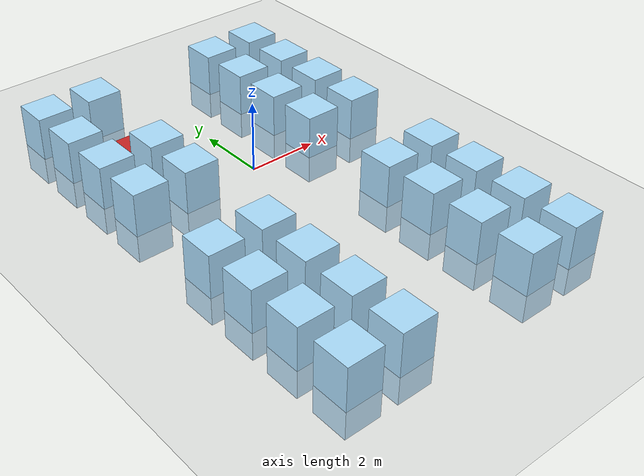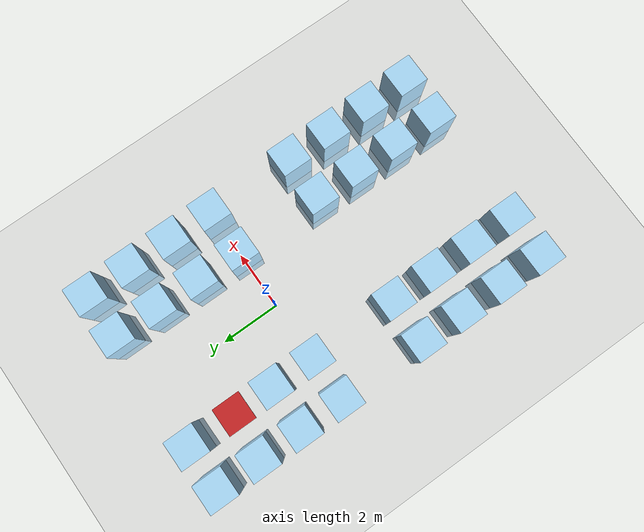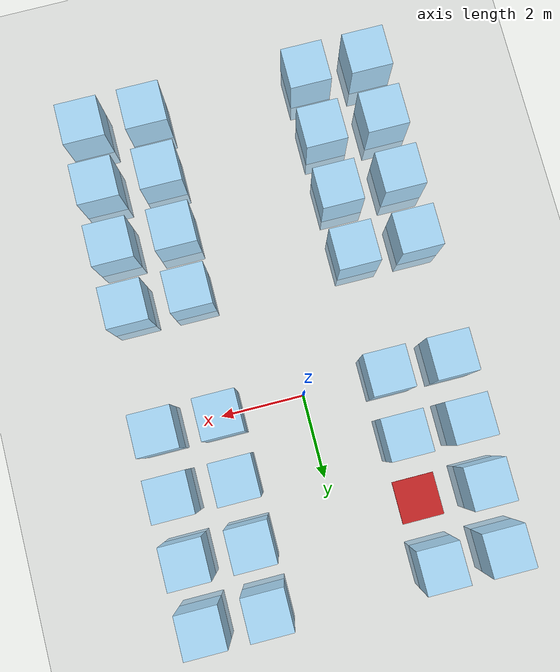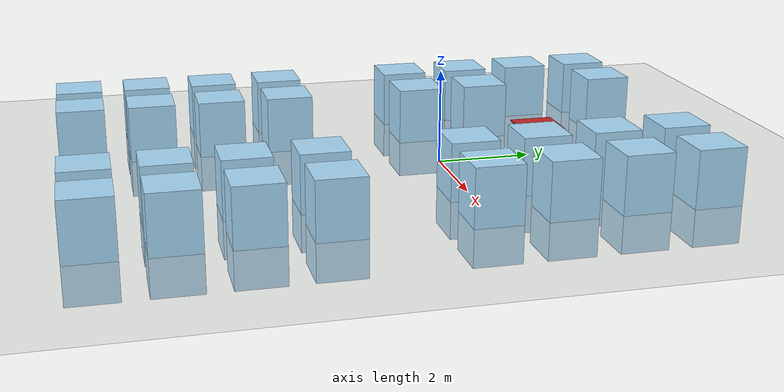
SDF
<sdf version="1.6">
 <world name="default">
  <model name="ground_plane">
   <static>1</static>
   <link name="link">
    <collision name="collision">
     <geometry><plane><normal>0 0 1</normal><size>100 100</size></plane></geometry>
     <surface><friction><ode><mu>100</mu><mu2>50</mu2></ode></friction></surface>
    </collision>
    <visual name="visual">
     <cast_shadows>0</cast_shadows>
     <geometry><plane><normal>0 0 1</normal><size>100 100</size></plane></geometry>
     <material><script><uri>model://aws_robomaker_warehouse_GroundB_01</uri></script></material>
    </visual>
   </link>
  </model>
  <gravity>0 0 -9.8</gravity>
  <magnetic_field>6e-06 2.3e-05 -4.2e-05</magnetic_field>
  <atmosphere type="adiabatic"/>
  <physics name="default_physics" default="0" type="ode">
   <max_step_size>0.001</max_step_size>
   <real_time_update_rate>1000</real_time_update_rate>
  </physics>
  <model name="grid1_1">
   <pose>3.5 -7.5 0.2 0 0 0</pose>
   <link name="link">
    <collision name="collision"><geometry><box><size>1 1 2</size></box></geometry></collision>
    <visual name="visual">
     <geometry><box><size>1 1 2</size></box></geometry>
     <material>
      <ambient>0.678 0.878 1 1</ambient>
      <script><uri>file://media/materials/scripts/gazebo.material</uri></script>
     </material>
    </visual>
   </link>
  </model>
  <model name="grid1_2">
   <pose>2 -7.5 0.2 0 0 0</pose>
   <link name="link">
    <collision name="collision"><geometry><box><size>1 1 2</size></box></geometry></collision>
    <visual name="visual">
     <geometry><box><size>1 1 2</size></box></geometry>
     <material>
      <ambient>0.678 0.878 1 1</ambient>
      <script><uri>file://media/materials/scripts/gazebo.material</uri></script>
     </material>
    </visual>
   </link>
  </model>
  <model name="grid1_3">
   <pose>3.5 -6 0.2 0 0 0</pose>
   <link name="link">
    <collision name="collision"><geometry><box><size>1 1 2</size></box></geometry></collision>
    <visual name="visual">
     <geometry><box><size>1 1 2</size></box></geometry>
     <material>
      <ambient>0.678 0.878 1 1</ambient>
      <script><uri>file://media/materials/scripts/gazebo.material</uri></script>
     </material>
    </visual>
   </link>
  </model>
  <model name="grid1_4">
   <pose>2 -6 0.2 0 0 0</pose>
   <link name="link">
    <collision name="collision"><geometry><box><size>1 1 2</size></box></geometry></collision>
    <visual name="visual">
     <geometry><box><size>1 1 2</size></box></geometry>
     <material>
      <ambient>0.678 0.878 1 1</ambient>
      <script><uri>file://media/materials/scripts/gazebo.material</uri></script>
     </material>
    </visual>
   </link>
  </model>
  <model name="grid1_5">
   <pose>3.5 -4.5 0.2 0 0 0</pose>
   <link name="link">
    <collision name="collision"><geometry><box><size>1 1 2</size></box></geometry></collision>
    <visual name="visual">
     <geometry><box><size>1 1 2</size></box></geometry>
     <material>
      <ambient>0.678 0.878 1 1</ambient>
      <script><uri>file://media/materials/scripts/gazebo.material</uri></script>
     </material>
    </visual>
   </link>
  </model>
  <model name="grid1_6">
   <pose>2 -4.5 0.2 0 0 0</pose>
   <link name="link">
    <collision name="collision"><geometry><box><size>1 1 2</size></box></geometry></collision>
    <visual name="visual">
     <geometry><box><size>1 1 2</size></box></geometry>
     <material>
      <ambient>0.678 0.878 1 1</ambient>
      <script><uri>file://media/materials/scripts/gazebo.material</uri></script>
     </material>
    </visual>
   </link>
  </model>
  <model name="grid1_7">
   <pose>3.5 -3 0.2 0 0 0</pose>
   <link name="link">
    <collision name="collision"><geometry><box><size>1 1 2</size></box></geometry></collision>
    <visual name="visual">
     <geometry><box><size>1 1 2</size></box></geometry>
     <material>
      <ambient>0.678 0.878 1 1</ambient>
      <script><uri>file://media/materials/scripts/gazebo.material</uri></script>
     </material>
    </visual>
   </link>
  </model>
  <model name="grid1_8">
   <pose>2 -3 0.2 0 0 0</pose>
   <link name="link">
    <collision name="collision"><geometry><box><size>1 1 2</size></box></geometry></collision>
    <visual name="visual">
     <geometry><box><size>1 1 2</size></box></geometry>
     <material>
      <ambient>0.678 0.878 1 1</ambient>
      <script><uri>file://media/materials/scripts/gazebo.material</uri></script>
     </material>
    </visual>
   </link>
  </model>
  <model name="grid2_1">
   <pose>-2 -7.5 0.2 0 0 0</pose>
   <link name="link">
    <collision name="collision"><geometry><box><size>1 1 2</size></box></geometry></collision>
    <visual name="visual">
     <geometry><box><size>1 1 2</size></box></geometry>
     <material>
      <ambient>0.678 0.878 1 1</ambient>
      <script><uri>file://media/materials/scripts/gazebo.material</uri></script>
     </material>
    </visual>
   </link>
  </model>
  <model name="grid2_2">
   <pose>-3.5 -7.5 0.2 0 0 0</pose>
   <link name="link">
    <collision name="collision"><geometry><box><size>1 1 2</size></box></geometry></collision>
    <visual name="visual">
     <geometry><box><size>1 1 2</size></box></geometry>
     <material>
      <ambient>0.678 0.878 1 1</ambient>
      <script><uri>file://media/materials/scripts/gazebo.material</uri></script>
     </material>
    </visual>
   </link>
  </model>
  <model name="grid2_3">
   <pose>-2 -6 0.2 0 0 0</pose>
   <link name="link">
    <collision name="collision"><geometry><box><size>1 1 2</size></box></geometry></collision>
    <visual name="visual">
     <geometry><box><size>1 1 2</size></box></geometry>
     <material>
      <ambient>0.678 0.878 1 1</ambient>
      <script><uri>file://media/materials/scripts/gazebo.material</uri></script>
     </material>
    </visual>
   </link>
  </model>
  <model name="grid2_4">
   <pose>-3.5 -6 0.2 0 0 0</pose>
   <link name="link">
    <collision name="collision"><geometry><box><size>1 1 2</size></box></geometry></collision>
    <visual name="visual">
     <geometry><box><size>1 1 2</size></box></geometry>
     <material>
      <ambient>0.678 0.878 1 1</ambient>
      <script><uri>file://media/materials/scripts/gazebo.material</uri></script>
     </material>
    </visual>
   </link>
  </model>
  <model name="grid2_5">
   <pose>-2 -4.5 0.2 0 0 0</pose>
   <link name="link">
    <collision name="collision"><geometry><box><size>1 1 2</size></box></geometry></collision>
    <visual name="visual">
     <geometry><box><size>1 1 2</size></box></geometry>
     <material>
      <ambient>0.678 0.878 1 1</ambient>
      <script><uri>file://media/materials/scripts/gazebo.material</uri></script>
     </material>
    </visual>
   </link>
  </model>
  <model name="grid2_6">
   <pose>-3.5 -4.5 0.2 0 0 0</pose>
   <link name="link">
    <collision name="collision"><geometry><box><size>1 1 2</size></box></geometry></collision>
    <visual name="visual">
     <geometry><box><size>1 1 2</size></box></geometry>
     <material>
      <ambient>0.678 0.878 1 1</ambient>
      <script><uri>file://media/materials/scripts/gazebo.material</uri></script>
     </material>
    </visual>
   </link>
  </model>
  <model name="grid2_7">
   <pose>-2 -3 0.2 0 0 0</pose>
   <link name="link">
    <collision name="collision"><geometry><box><size>1 1 2</size></box></geometry></collision>
    <visual name="visual">
     <geometry><box><size>1 1 2</size></box></geometry>
     <material>
      <ambient>0.678 0.878 1 1</ambient>
      <script><uri>file://media/materials/scripts/gazebo.material</uri></script>
     </material>
    </visual>
   </link>
  </model>
  <model name="grid2_8">
   <pose>-3.5 -3 0.2 0 0 0</pose>
   <link name="link">
    <collision name="collision"><geometry><box><size>1 1 2</size></box></geometry></collision>
    <visual name="visual">
     <geometry><box><size>1 1 2</size></box></geometry>
     <material>
      <ambient>0.678 0.878 1 1</ambient>
      <script><uri>file://media/materials/scripts/gazebo.material</uri></script>
     </material>
    </visual>
   </link>
  </model>
  <model name="grid3_1">
   <pose>3.5 0 0.2 0 0 0</pose>
   <link name="link">
    <collision name="collision"><geometry><box><size>1 1 2</size></box></geometry></collision>
    <visual name="visual">
     <geometry><box><size>1 1 2</size></box></geometry>
     <material>
      <ambient>0.678 0.878 1 1</ambient>
      <script><uri>file://media/materials/scripts/gazebo.material</uri></script>
     </material>
    </visual>
   </link>
  </model>
  <model name="grid3_2">
   <pose>2 0 0.2 0 0 0</pose>
   <link name="link">
    <collision name="collision"><geometry><box><size>1 1 2</size></box></geometry></collision>
    <visual name="visual">
     <geometry><box><size>1 1 2</size></box></geometry>
     <material>
      <ambient>0.678 0.878 1 1</ambient>
      <script><uri>file://media/materials/scripts/gazebo.material</uri></script>
     </material>
    </visual>
   </link>
  </model>
  <model name="grid3_3">
   <pose>3.5 1.5 0.2 0 0 0</pose>
   <link name="link">
    <collision name="collision"><geometry><box><size>1 1 2</size></box></geometry></collision>
    <visual name="visual">
     <geometry><box><size>1 1 2</size></box></geometry>
     <material>
      <ambient>0.678 0.878 1 1</ambient>
      <script><uri>file://media/materials/scripts/gazebo.material</uri></script>
     </material>
    </visual>
   </link>
  </model>
  <model name="grid3_4">
   <pose>2 1.5 0.2 0 0 0</pose>
   <link name="link">
    <collision name="collision"><geometry><box><size>1 1 2</size></box></geometry></collision>
    <visual name="visual">
     <geometry><box><size>1 1 2</size></box></geometry>
     <material>
      <ambient>0.678 0.878 1 1</ambient>
      <script><uri>file://media/materials/scripts/gazebo.material</uri></script>
     </material>
    </visual>
   </link>
  </model>
  <model name="grid3_5">
   <pose>3.5 3 0.2 0 0 0</pose>
   <link name="link">
    <collision name="collision"><geometry><box><size>1 1 2</size></box></geometry></collision>
    <visual name="visual">
     <geometry><box><size>1 1 2</size></box></geometry>
     <material>
      <ambient>0.678 0.878 1 1</ambient>
      <script><uri>file://media/materials/scripts/gazebo.material</uri></script>
     </material>
    </visual>
   </link>
  </model>
  <model name="grid3_6">
   <pose>2 3 0.2 0 0 0</pose>
   <link name="link">
    <collision name="collision"><geometry><box><size>1 1 2</size></box></geometry></collision>
    <visual name="visual">
     <geometry><box><size>1 1 2</size></box></geometry>
     <material>
      <ambient>0.678 0.878 1 1</ambient>
      <script><uri>file://media/materials/scripts/gazebo.material</uri></script>
     </material>
    </visual>
   </link>
  </model>
  <model name="grid3_7">
   <pose>3.5 4.5 0.2 0 0 0</pose>
   <link name="link">
    <collision name="collision"><geometry><box><size>1 1 2</size></box></geometry></collision>
    <visual name="visual">
     <geometry><box><size>1 1 2</size></box></geometry>
     <material>
      <ambient>0.678 0.878 1 1</ambient>
      <script><uri>file://media/materials/scripts/gazebo.material</uri></script>
     </material>
    </visual>
   </link>
  </model>
  <model name="grid3_8">
   <pose>2 4.5 0.2 0 0 0</pose>
   <link name="link">
    <collision name="collision"><geometry><box><size>1 1 2</size></box></geometry></collision>
    <visual name="visual">
     <geometry><box><size>1 1 2</size></box></geometry>
     <material>
      <ambient>0.678 0.878 1 1</ambient>
      <script><uri>file://media/materials/scripts/gazebo.material</uri></script>
     </material>
    </visual>
   </link>
  </model>
  <model name="grid4_1">
   <pose>-2 0 0.2 0 0 0</pose>
   <link name="link">
    <collision name="collision"><geometry><box><size>1 1 2</size></box></geometry></collision>
    <visual name="visual">
     <geometry><box><size>1 1 2</size></box></geometry>
     <material>
      <ambient>0.678 0.878 1 1</ambient>
      <script><uri>file://media/materials/scripts/gazebo.material</uri></script>
     </material>
    </visual>
   </link>
  </model>
  <model name="grid4_2">
   <pose>-3.5 0 0.2 0 0 0</pose>
   <link name="link">
    <collision name="collision"><geometry><box><size>1 1 2</size></box></geometry></collision>
    <visual name="visual">
     <geometry><box><size>1 1 2</size></box></geometry>
     <material>
      <ambient>0.678 0.878 1 1</ambient>
      <script><uri>file://media/materials/scripts/gazebo.material</uri></script>
     </material>
    </visual>
   </link>
  </model>
  <model name="grid4_3">
   <pose>-2 1.5 0.2 0 0 0</pose>
   <link name="link">
    <collision name="collision"><geometry><box><size>1 1 2</size></box></geometry></collision>
    <visual name="visual">
     <geometry><box><size>1 1 2</size></box></geometry>
     <material>
      <ambient>0.678 0.878 1 1</ambient>
      <script><uri>file://media/materials/scripts/gazebo.material</uri></script>
     </material>
    </visual>
   </link>
  </model>
  <model name="grid4_4">
   <pose>-3.5 1.5 0.2 0 0 0</pose>
   <link name="link">
    <collision name="collision"><geometry><box><size>1 1 2</size></box></geometry></collision>
    <visual name="visual">
     <geometry><box><size>1 1 2</size></box></geometry>
     <material>
      <ambient>0.678 0.878 1 1</ambient>
      <script><uri>file://media/materials/scripts/gazebo.material</uri></script>
     </material>
    </visual>
   </link>
  </model>
  <model name="grid4_5">
   <pose>-2 3 0.03 0 0 0</pose>
   <link name="link">
    <collision name="collision"><geometry><box><size>1 1 0.03</size></box></geometry></collision>
    <visual name="visual">
     <geometry><box><size>1 1 0.03</size></box></geometry>
     <material>
      <script><name>Gazebo/Red</name><uri>file://media/materials/scripts/gazebo.material</uri></script>
     </material>
    </visual>
   </link>
  </model>
  <model name="grid4_6">
   <pose>-3.5 3 0.2 0 0 0</pose>
   <link name="link">
    <collision name="collision"><geometry><box><size>1 1 2</size></box></geometry></collision>
    <visual name="visual">
     <geometry><box><size>1 1 2</size></box></geometry>
     <material>
      <ambient>0.678 0.878 1 1</ambient>
      <script><uri>file://media/materials/scripts/gazebo.material</uri></script>
     </material>
    </visual>
   </link>
  </model>
  <model name="grid4_7">
   <pose>-2 4.5 0.2 0 0 0</pose>
   <link name="link">
    <collision name="collision"><geometry><box><size>1 1 2</size></box></geometry></collision>
    <visual name="visual">
     <geometry><box><size>1 1 2</size></box></geometry>
     <material>
      <ambient>0.678 0.878 1 1</ambient>
      <script><uri>file://media/materials/scripts/gazebo.material</uri></script>
     </material>
    </visual>
   </link>
  </model>
  <model name="grid4_8">
   <pose>-3.5 4.5 0.2 0 0 0</pose>
   <link name="link">
    <collision name="collision"><geometry><box><size>1 1 2</size></box></geometry></collision>
    <visual name="visual">
     <geometry><box><size>1 1 2</size></box></geometry>
     <material>
      <ambient>0.678 0.878 1 1</ambient>
      <script><uri>file://media/materials/scripts/gazebo.material</uri></script>
     </material>
    </visual>
   </link>
  </model>
  <light name="Warehouse_CeilingLight_003" type="point">
   <pose>0 0 9 0 0 0</pose>
   <diffuse>0.5 0.5 0.5 1</diffuse>
   <specular>0.2 0.2 0.2 1</specular>
   <attenuation>
    <range>80</range>
    <constant>0.3</constant>
    <linear>0.01</linear>
    <quadratic>0.001</quadratic>
   </attenuation>
   <direction>0.1 0.1 -1</direction>
  </light>
 </world>
</sdf>
